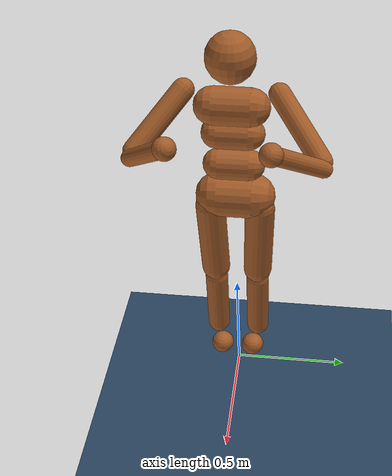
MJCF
<mujoco model="humanoid">
  <asset>
    <texture name="body" type="cube" builtin="flat" mark="cross" width="512" height="512" rgb1="0.8 0.6 0.4" rgb2="0.8 0.6 0.4" markrgb="1 1 1" random="0.01"/>
    <material name="body" texture="body" texuniform="true" rgba="0.8 0.6 .4 1"/>
    <texture name="grid" type="2d" builtin="checker" width="512" height="512" rgb1=".1 .2 .3" rgb2=".2 .3 .4"/>
    <material name="grid" texture="grid" texrepeat="1 1" texuniform="true" reflectance=".2"/>
  </asset>

  <custom>
    <numeric data="8" name="max_contact_points"/>
    <numeric data="8" name="max_geom_pairs"/>
  </custom>

  <default>
    <motor ctrlrange="-1 1" ctrllimited="true"/>
    <default class="body">

      <!-- geoms -->
      <geom type="capsule" condim="1" friction=".7" solimp=".9 .99 .003" solref=".015 1" material="body" contype="0" conaffinity="0"/>
      <default class="thigh">
        <geom size=".06"/>
      </default>
      <default class="shin">
        <geom fromto="0 0 0 0 0 -.3"  size=".049"/>
      </default>
      <default class="foot">
        <geom size=".027"/>
        <default class="foot_ball">
          <geom type="sphere" size="0.05" pos="0 0 0"/>
        </default>
      </default>
      <default class="arm_upper">
        <geom size=".04"/>
      </default>
      <default class="arm_lower">
        <geom size=".031"/>
      </default>
      <default class="hand">
        <geom type="sphere" size=".04"/>
      </default>

      <!-- joints -->
      <joint type="hinge" damping=".2" stiffness="1" armature=".01" limited="true" solimplimit="0 .99 .01"/>
      <default class="joint_big">
        <joint damping="5" stiffness="10"/>
        <default class="hip_x">
          <joint range="-30 10"/>
        </default>
        <default class="hip_z">
          <joint range="-60 35"/>
        </default>
        <default class="hip_y">
          <joint axis="0 1 0" range="-150 20"/>
        </default>
        <default class="joint_big_stiff">
          <joint stiffness="20"/>
        </default>
      </default>
      <default class="knee">
        <joint pos="0 0 .02" axis="0 -1 0" range="-160 2"/>
      </default>
      <default class="ankle">
        <joint range="-50 50"/>
        <default class="ankle_y">
          <joint pos="0 0 .08" axis="0 1 0" stiffness="6"/>
        </default>
        <default class="ankle_x">
          <joint pos="0 0 .04" stiffness="3"/>
        </default>
      </default>
      <default class="shoulder">
        <joint range="-85 60"/>
      </default>
      <default class="elbow">
        <joint range="-100 50" stiffness="0"/>
      </default>
    </default>
  </default>

  <worldbody>
    <geom name="floor" size="0 0 .05" type="plane" material="grid" condim="1"/>
    <light name="spotlight" mode="targetbodycom" target="torso" diffuse=".8 .8 .8" specular="0.3 0.3 0.3" pos="0 -6 4" cutoff="30"/>
    <body name="torso" pos="0 0 1.4" childclass="body">
      <light name="top" pos="0 0 2" mode="trackcom"/>
      <camera name="back" pos="-3 0 1" xyaxes="0 -1 0 1 0 2" mode="trackcom"/>
      <camera name="side" pos="0 -3 1" xyaxes="1 0 0 0 1 2" mode="trackcom"/>
      <freejoint name="root"/>
      <geom name="torso" fromto="0 -.07 0 0 .07 0" size=".07"/>
      <geom name="waist_upper" fromto="-.01 -.06 -.12 -.01 .06 -.12" size=".06"/>
      <body name="head" pos="0 0 .19">
        <geom name="head" type="sphere" size=".09"/>
        <camera name="egocentric" pos=".09 0 0" xyaxes="0 -1 0 .1 0 1" fovy="80"/>
      </body>
      <body name="waist_lower" pos="-.01 0 -.26">
        <geom name="waist_lower" fromto="0 -.06 0 0 .06 0" size=".06"/>
        <joint name="abdomen_z" pos="0 0 .065" axis="0 0 1" range="-45 45" class="joint_big_stiff"/>
        <joint name="abdomen_y" pos="0 0 .065" axis="0 1 0" range="-75 30" class="joint_big"/>
        <body name="pelvis" pos="0 0 -.165">
          <joint name="abdomen_x" pos="0 0 .1" axis="1 0 0" range="-35 35" class="joint_big"/>
          <geom name="butt" fromto="-.02 -.07 0 -.02 .07 0" size=".09"/>
          <body name="thigh_right" pos="0 -.1 -.04">
            <joint name="hip_x_right" axis="1 0 0" class="hip_x"/>
            <joint name="hip_z_right" axis="0 0 1" class="hip_z"/>
            <joint name="hip_y_right" class="hip_y"/>
            <geom name="thigh_right" fromto="0 0 0 0 .01 -.34" class="thigh"/>
            <body name="shin_right" pos="0 .01 -.4">
              <joint name="knee_right" class="knee"/>
              <geom name="shin_right" class="shin"/>
              <body name="foot_right" pos="0.05 0.02 -.39">
                <site name="right_foot" />
                <joint name="ankle_y_right" class="ankle_y"/>
                <joint name="ankle_x_right" class="ankle_x" axis="1 0 .5"/>
                <geom name="foot_right" type="sphere" size="0.05" pos="0 0 0"/>
              </body>
            </body>
          </body>
          <body name="thigh_left" pos="0 .1 -.04">
            <joint name="hip_x_left" axis="-1 0 0" class="hip_x"/>
            <joint name="hip_z_left" axis="0 0 -1" class="hip_z"/>
            <joint name="hip_y_left" class="hip_y"/>
            <geom name="thigh_left" fromto="0 0 0 0 -.01 -.34" class="thigh"/>
            <body name="shin_left" pos="0 -.01 -.4">
              <joint name="knee_left" class="knee"/>
              <geom name="shin_left" fromto="0 0 0 0 0 -.3" class="shin"/>
              <body name="foot_left" pos="0.05 -0.02 -.39">
                <site name="left_foot" />
                <joint name="ankle_y_left" class="ankle_y"/>
                <joint name="ankle_x_left" class="ankle_x" axis="-1 0 -.5"/>
                <geom name="foot_left" type="sphere" size="0.05" pos="0 0 0"/>
              </body>
            </body>
          </body>
        </body>
      </body>
      <body name="upper_arm_right" pos="0 -.17 .06">
        <joint name="shoulder1_right" axis="2 1 1"  class="shoulder"/>
        <joint name="shoulder2_right" axis="0 -1 1" class="shoulder"/>
        <geom name="upper_arm_right" fromto="0 0 0 .16 -.16 -.16" class="arm_upper"/>
        <body name="lower_arm_right" pos=".18 -.18 -.18">
          <joint name="elbow_right" axis="0 -1 1" class="elbow"/>
          <geom name="lower_arm_right" fromto=".01 .01 .01 .17 .17 .17" class="arm_lower"/>
          <body name="hand_right" pos=".18 .18 .18">
            <geom name="hand_right" zaxis="1 1 1" class="hand"/>
          </body>
        </body>
      </body>
      <body name="upper_arm_left" pos="0 .17 .06">
        <joint name="shoulder1_left" axis="-2 1 -1" class="shoulder"/>
        <joint name="shoulder2_left" axis="0 -1 -1"  class="shoulder"/>
        <geom name="upper_arm_left" fromto="0 0 0 .16 .16 -.16" class="arm_upper"/>
        <body name="lower_arm_left" pos=".18 .18 -.18">
          <joint name="elbow_left" axis="0 -1 -1" class="elbow"/>
          <geom name="lower_arm_left" fromto=".01 -.01 .01 .17 -.17 .17" class="arm_lower"/>
          <body name="hand_left" pos=".18 -.18 .18">
            <geom name="hand_left" zaxis="1 -1 1" class="hand"/>
          </body>
        </body>
      </body>
      <site name="imu" />
    </body>
  </worldbody>

  <contact>
    <exclude body1="waist_lower" body2="thigh_right"/>
    <exclude body1="waist_lower" body2="thigh_left"/>
    <pair geom1="foot_left" geom2="floor"/>
    <pair geom1="foot_right" geom2="floor"/>
  </contact>

  <actuator>
    <motor name="abdomen_y_ctrl"       gear="40"  joint="abdomen_y"/>
    <motor name="abdomen_z_ctrl"       gear="40"  joint="abdomen_z"/>
    <motor name="abdomen_x_ctrl"       gear="40"  joint="abdomen_x"/>
    <motor name="hip_x_right_ctrl"     gear="40"  joint="hip_x_right"/>
    <motor name="hip_z_right_ctrl"     gear="40"  joint="hip_z_right"/>
    <motor name="hip_y_right_ctrl"     gear="120" joint="hip_y_right"/>
    <motor name="knee_right_ctrl"      gear="80"  joint="knee_right"/>
    <motor name="ankle_x_right_ctrl"   gear="20"  joint="ankle_x_right"/>
    <motor name="ankle_y_right_ctrl"   gear="20"  joint="ankle_y_right"/>
    <motor name="hip_x_left_ctrl"      gear="40"  joint="hip_x_left"/>
    <motor name="hip_z_left_ctrl"      gear="40"  joint="hip_z_left"/>
    <motor name="hip_y_left_ctrl"      gear="120" joint="hip_y_left"/>
    <motor name="knee_left_ctrl"       gear="80"  joint="knee_left"/>
    <motor name="ankle_x_left_ctrl"    gear="20"  joint="ankle_x_left"/>
    <motor name="ankle_y_left_ctrl"    gear="20"  joint="ankle_y_left"/>
    <motor name="shoulder1_right_ctrl" gear="20"  joint="shoulder1_right"/>
    <motor name="shoulder2_right_ctrl" gear="20"  joint="shoulder2_right"/>
    <motor name="elbow_right_ctrl"     gear="40"  joint="elbow_right"/>
    <motor name="shoulder1_left_ctrl"  gear="20"  joint="shoulder1_left"/>
    <motor name="shoulder2_left_ctrl"  gear="20"  joint="shoulder2_left"/>
    <motor name="elbow_left_ctrl"      gear="40"  joint="elbow_left"/>
  </actuator>

  <sensor>
    <gyro site="imu" name="imu_gyro"/>
    <velocimeter site="imu" name="local_linvel"/>
    <accelerometer site="imu" name="imu_acc"/>
    <framezaxis objtype="site" objname="imu" name="upvector"/>
    <framexaxis objtype="site" objname="imu" name="forwardvector"/>
    <framelinvel objtype="site" objname="imu" name="global_linvel"/>
    <frameangvel objtype="site" objname="imu" name="global_angvel"/>
    <framepos objtype="site" objname="imu" name="position"/>
    <framequat objtype="site" objname="imu" name="orientation"/>
    <framelinvel objtype="site" objname="right_foot" name="right_foot_global_linvel"/>
    <framelinvel objtype="site" objname="left_foot" name="left_foot_global_linvel"/>
    <framexaxis objtype="site" objname="left_foot" name="left_foot_upvector"/>
    <framexaxis objtype="site" objname="right_foot" name="right_foot_upvector"/>
    <framepos objtype="site" objname="left_foot" name="left_foot_pos"/>
    <framepos objtype="site" objname="right_foot" name="right_foot_pos"/>
  </sensor>

  <keyframe>
    <key name="boxer" qpos='0 0 1.4 1 0 0 0 0 0 0 0 0 0 0 0 0 0 0 0 0 0 0 0 0 0 0 0 0'/>
    <key name="relaxed" qpos='0 0 1.4 1 0 0 0 0 0 0 0 0 0 0 0 0 0 0 0 0 0 0 0.71797 -0.52222 -1.54867 0.71797 -0.52222 -1.54867'/>
    <key name="tpose" qpos='0 0 1.4 1 0 0 0 0 0 0 0 0 0 0 0 0 0 0 0 0 0 0 -0.813285 -0.49691 -1.745 -0.813285 -0.49691 -1.745'/>
  </keyframe>
</mujoco>
